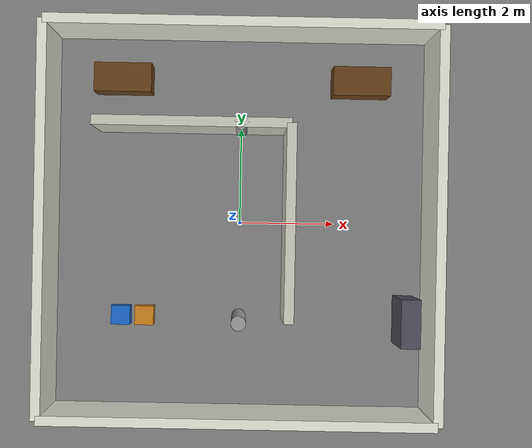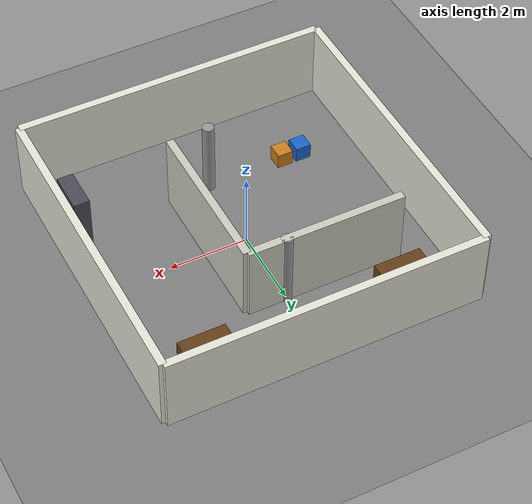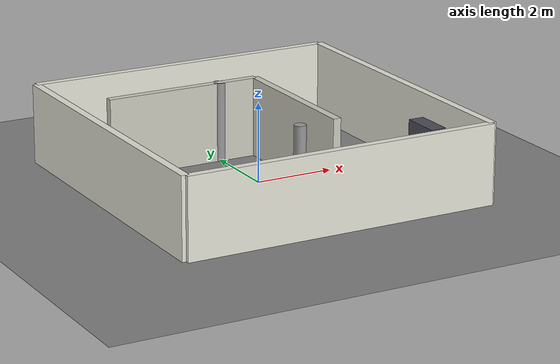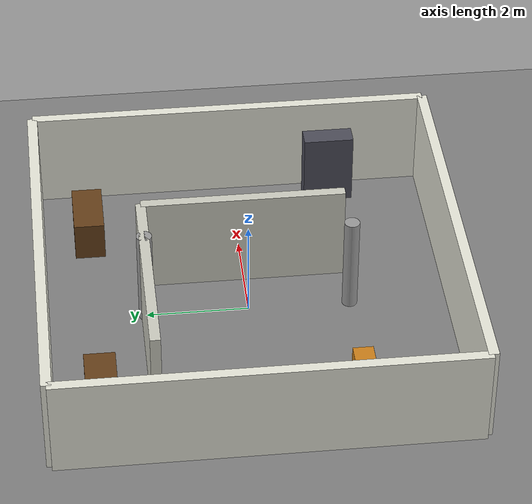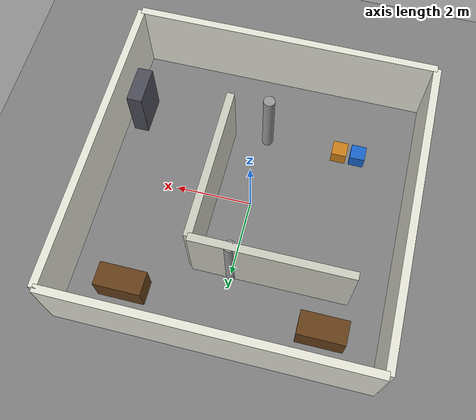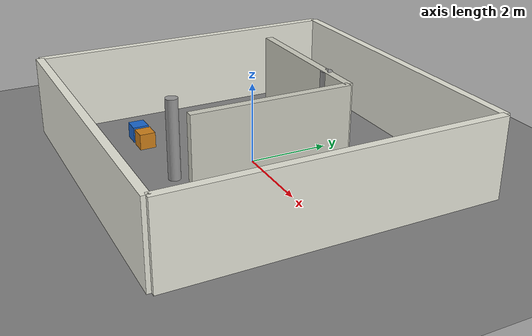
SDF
<?xml version="1.0" ?>
<sdf version="1.6">
  <world name="office_world">

    <!-- Physics -->
    <physics type="ode">
      <real_time_update_rate>1000.0</real_time_update_rate>
      <max_step_size>0.001</max_step_size>
    </physics>

    <!-- Sun light -->
    <light name="sun" type="directional">
      <cast_shadows>true</cast_shadows>
      <pose>0 0 10 0 0 0</pose>
      <diffuse>0.8 0.8 0.8 1</diffuse>
      <specular>0.2 0.2 0.2 1</specular>
      <direction>-0.5 0.1 -0.9</direction>
    </light>

    <!-- Ground plane -->
    <model name="ground_plane">
      <static>true</static>
      <link name="link">
        <collision name="collision">
          <geometry>
            <plane>
              <normal>0 0 1</normal>
              <size>20 20</size>
            </plane>
          </geometry>
        </collision>
        <visual name="visual">
          <geometry>
            <plane>
              <normal>0 0 1</normal>
              <size>20 20</size>
            </plane>
          </geometry>
          <material>
            <ambient>0.5 0.5 0.5 1</ambient>
            <diffuse>0.5 0.5 0.5 1</diffuse>
          </material>
        </visual>
      </link>
    </model>

    <!-- Outer walls -->
    <!-- North wall -->
    <model name="wall_north">
      <static>true</static>
      <pose>0 4 1 0 0 0</pose>
      <link name="link">
        <collision name="collision">
          <geometry><box><size>8 0.2 2</size></box></geometry>
        </collision>
        <visual name="visual">
          <geometry><box><size>8 0.2 2</size></box></geometry>
          <material><ambient>0.9 0.9 0.85 1</ambient><diffuse>0.9 0.9 0.85 1</diffuse></material>
        </visual>
      </link>
    </model>

    <!-- South wall -->
    <model name="wall_south">
      <static>true</static>
      <pose>0 -4 1 0 0 0</pose>
      <link name="link">
        <collision name="collision">
          <geometry><box><size>8 0.2 2</size></box></geometry>
        </collision>
        <visual name="visual">
          <geometry><box><size>8 0.2 2</size></box></geometry>
          <material><ambient>0.9 0.9 0.85 1</ambient><diffuse>0.9 0.9 0.85 1</diffuse></material>
        </visual>
      </link>
    </model>

    <!-- East wall -->
    <model name="wall_east">
      <static>true</static>
      <pose>4 0 1 0 0 0</pose>
      <link name="link">
        <collision name="collision">
          <geometry><box><size>0.2 8 2</size></box></geometry>
        </collision>
        <visual name="visual">
          <geometry><box><size>0.2 8 2</size></box></geometry>
          <material><ambient>0.9 0.9 0.85 1</ambient><diffuse>0.9 0.9 0.85 1</diffuse></material>
        </visual>
      </link>
    </model>

    <!-- West wall -->
    <model name="wall_west">
      <static>true</static>
      <pose>-4 0 1 0 0 0</pose>
      <link name="link">
        <collision name="collision">
          <geometry><box><size>0.2 8 2</size></box></geometry>
        </collision>
        <visual name="visual">
          <geometry><box><size>0.2 8 2</size></box></geometry>
          <material><ambient>0.9 0.9 0.85 1</ambient><diffuse>0.9 0.9 0.85 1</diffuse></material>
        </visual>
      </link>
    </model>

    <!-- Interior wall 1 (horizontal divider) -->
    <model name="wall_interior_1">
      <static>true</static>
      <pose>1 0 1 0 0 0</pose>
      <link name="link">
        <collision name="collision">
          <geometry><box><size>0.2 4 2</size></box></geometry>
        </collision>
        <visual name="visual">
          <geometry><box><size>0.2 4 2</size></box></geometry>
          <material><ambient>0.8 0.8 0.75 1</ambient><diffuse>0.8 0.8 0.75 1</diffuse></material>
        </visual>
      </link>
    </model>

    <!-- Interior wall 2 -->
    <model name="wall_interior_2">
      <static>true</static>
      <pose>-1 2 1 0 0 0</pose>
      <link name="link">
        <collision name="collision">
          <geometry><box><size>4 0.2 2</size></box></geometry>
        </collision>
        <visual name="visual">
          <geometry><box><size>4 0.2 2</size></box></geometry>
          <material><ambient>0.8 0.8 0.75 1</ambient><diffuse>0.8 0.8 0.75 1</diffuse></material>
        </visual>
      </link>
    </model>

    <!-- Desk 1 -->
    <model name="desk1">
      <static>true</static>
      <pose>-2.5 3 0.4 0 0 0</pose>
      <link name="link">
        <collision name="collision">
          <geometry><box><size>1.2 0.6 0.8</size></box></geometry>
        </collision>
        <visual name="visual">
          <geometry><box><size>1.2 0.6 0.8</size></box></geometry>
          <material><ambient>0.4 0.25 0.1 1</ambient><diffuse>0.4 0.25 0.1 1</diffuse></material>
        </visual>
      </link>
    </model>

    <!-- Desk 2 -->
    <model name="desk2">
      <static>true</static>
      <pose>2.5 3 0.4 0 0 0</pose>
      <link name="link">
        <collision name="collision">
          <geometry><box><size>1.2 0.6 0.8</size></box></geometry>
        </collision>
        <visual name="visual">
          <geometry><box><size>1.2 0.6 0.8</size></box></geometry>
          <material><ambient>0.4 0.25 0.1 1</ambient><diffuse>0.4 0.25 0.1 1</diffuse></material>
        </visual>
      </link>
    </model>

    <!-- Cabinet -->
    <model name="cabinet">
      <static>true</static>
      <pose>3.5 -2 0.75 0 0 0</pose>
      <link name="link">
        <collision name="collision">
          <geometry><box><size>0.4 1.0 1.5</size></box></geometry>
        </collision>
        <visual name="visual">
          <geometry><box><size>0.4 1.0 1.5</size></box></geometry>
          <material><ambient>0.3 0.3 0.35 1</ambient><diffuse>0.3 0.3 0.35 1</diffuse></material>
        </visual>
      </link>
    </model>

    <!-- Box/package on floor -->
    <model name="box1">
      <static>true</static>
      <pose>-2 -2 0.2 0 0 0</pose>
      <link name="link">
        <collision name="collision">
          <geometry><box><size>0.4 0.4 0.4</size></box></geometry>
        </collision>
        <visual name="visual">
          <geometry><box><size>0.4 0.4 0.4</size></box></geometry>
          <material><ambient>0.8 0.5 0.1 1</ambient><diffuse>0.8 0.5 0.1 1</diffuse></material>
        </visual>
      </link>
    </model>

    <!-- Box 2 -->
    <model name="box2">
      <static>true</static>
      <pose>-2.5 -2 0.2 0 0 0</pose>
      <link name="link">
        <collision name="collision">
          <geometry><box><size>0.4 0.4 0.4</size></box></geometry>
        </collision>
        <visual name="visual">
          <geometry><box><size>0.4 0.4 0.4</size></box></geometry>
          <material><ambient>0.1 0.4 0.8 1</ambient><diffuse>0.1 0.4 0.8 1</diffuse></material>
        </visual>
      </link>
    </model>

    <!-- Cylinder pillar 1 -->
    <model name="pillar1">
      <static>true</static>
      <pose>0 -2 1 0 0 0</pose>
      <link name="link">
        <collision name="collision">
          <geometry><cylinder><radius>0.15</radius><length>2</length></cylinder></geometry>
        </collision>
        <visual name="visual">
          <geometry><cylinder><radius>0.15</radius><length>2</length></cylinder></geometry>
          <material><ambient>0.6 0.6 0.6 1</ambient><diffuse>0.6 0.6 0.6 1</diffuse></material>
        </visual>
      </link>
    </model>

    <!-- Cylinder pillar 2 -->
    <model name="pillar2">
      <static>true</static>
      <pose>0 2 1 0 0 0</pose>
      <link name="link">
        <collision name="collision">
          <geometry><cylinder><radius>0.15</radius><length>2</length></cylinder></geometry>
        </collision>
        <visual name="visual">
          <geometry><cylinder><radius>0.15</radius><length>2</length></cylinder></geometry>
          <material><ambient>0.6 0.6 0.6 1</ambient><diffuse>0.6 0.6 0.6 1</diffuse></material>
        </visual>
      </link>
    </model>

  </world>
</sdf>
